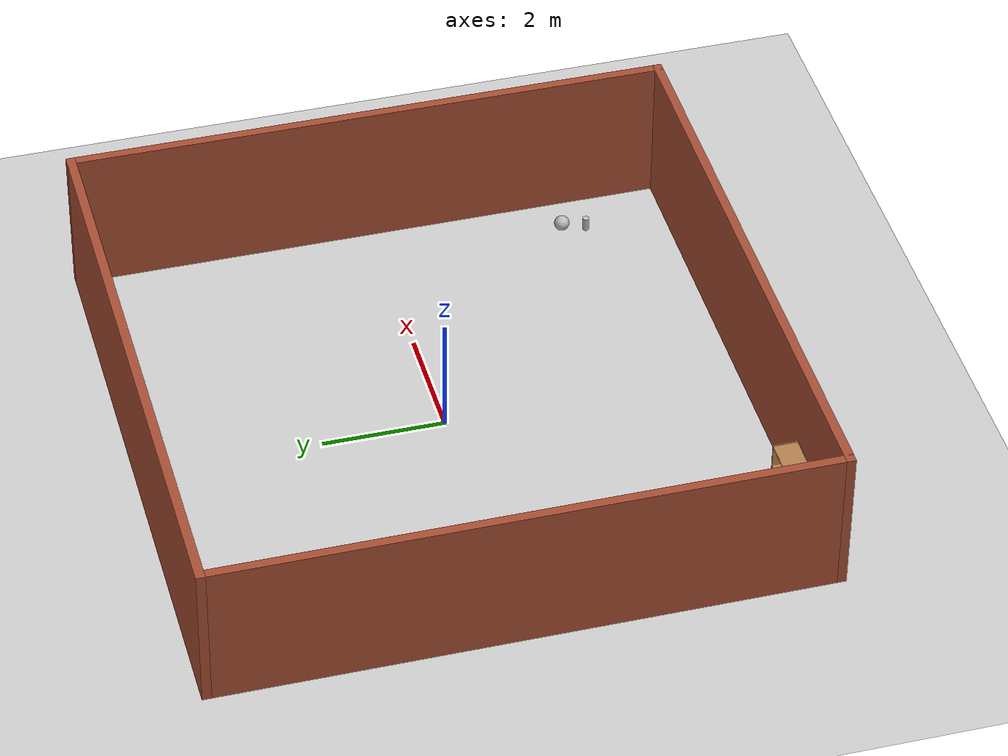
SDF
<sdf version="1.6">
 <world name="default">
  <light name="sun" type="directional">
   <pose>0 0 10 0 -0 0</pose>
   <diffuse>0.8 0.8 0.8 1</diffuse>
   <specular>0.2 0.2 0.2 1</specular>
   <attenuation>
    <range>1000</range>
    <constant>0.9</constant>
    <linear>0.01</linear>
    <quadratic>0.001</quadratic>
   </attenuation>
   <direction>-0.5 0.1 -0.9</direction>
  </light>
  <model name="ground_plane">
   <static>1</static>
   <link name="link">
    <collision name="collision">
     <geometry><plane><normal>0 0 1</normal><size>100 100</size></plane></geometry>
     <surface>
      <contact><collide_bitmask>65535</collide_bitmask></contact>
      <friction><ode><mu>100</mu><mu2>50</mu2></ode></friction>
     </surface>
    </collision>
    <visual name="visual">
     <cast_shadows>0</cast_shadows>
     <geometry><plane><normal>0 0 1</normal><size>100 100</size></plane></geometry>
     <material>
      <script><uri>file://media/materials/scripts/gazebo.material</uri><name>Gazebo/Grey</name></script>
     </material>
    </visual>
   </link>
  </model>
  <gravity>0 0 -9.8</gravity>
  <magnetic_field>6e-06 2.3e-05 -4.2e-05</magnetic_field>
  <atmosphere type="adiabatic"/>
  <physics name="default_physics" default="0" type="ode">
   <max_step_size>0.001</max_step_size>
   <real_time_factor>1</real_time_factor>
   <real_time_update_rate>1000</real_time_update_rate>
  </physics>
  <scene><ambient>0.4 0.4 0.4 1</ambient><background>0.7 0.7 0.7 1</background><shadows>1</shadows></scene>
  <spherical_coordinates>
   <surface_model>EARTH_WGS84</surface_model>
   <latitude_deg>0</latitude_deg>
   <longitude_deg>0</longitude_deg>
   <elevation>0</elevation>
   <heading_deg>0</heading_deg>
  </spherical_coordinates>
  <model name="Square_Room">
   <link name="Wall_13">
    <collision name="Wall_13_Collision">
     <geometry><box><size>10 0.15 2.5</size></box></geometry>
     <pose>0 0 1.25 0 -0 0</pose>
    </collision>
    <visual name="Wall_13_Visual">
     <pose>0 0 1.25 0 -0 0</pose>
     <geometry><box><size>10 0.15 2.5</size></box></geometry>
     <material>
      <script><uri>file://media/materials/scripts/gazebo.material</uri><name>Gazebo/Bricks</name></script>
      <ambient>0.435294 0.796078 0.67451 1</ambient>
     </material>
     <meta><layer>0</layer></meta>
    </visual>
    <pose>-4.92478 -0.013311 0 0 -0 -1.5708</pose>
   </link>
   <link name="Wall_14">
    <collision name="Wall_14_Collision">
     <geometry><box><size>10.0001 0.15 2.5</size></box></geometry>
     <pose>0 0 1.25 0 -0 0</pose>
    </collision>
    <visual name="Wall_14_Visual">
     <pose>0 0 1.25 0 -0 0</pose>
     <geometry><box><size>10.0001 0.15 2.5</size></box></geometry>
     <material>
      <script><uri>file://media/materials/scripts/gazebo.material</uri><name>Gazebo/Bricks</name></script>
      <ambient>1 1 1 1</ambient>
     </material>
     <meta><layer>0</layer></meta>
    </visual>
    <pose>0 -4.9249 0 0 -0 0.002724</pose>
   </link>
   <link name="Wall_15">
    <collision name="Wall_15_Collision">
     <geometry><box><size>10 0.15 2.5</size></box></geometry>
     <pose>0 0 1.25 0 -0 0</pose>
    </collision>
    <visual name="Wall_15_Visual">
     <pose>0 0 1.25 0 -0 0</pose>
     <geometry><box><size>10 0.15 2.5</size></box></geometry>
     <material>
      <script><uri>file://media/materials/scripts/gazebo.material</uri><name>Gazebo/Bricks</name></script>
      <ambient>1 1 1 1</ambient>
     </material>
     <meta><layer>0</layer></meta>
    </visual>
    <pose>4.92478 0.013516 0 0 -0 1.5708</pose>
   </link>
   <link name="Wall_16">
    <collision name="Wall_16_Collision">
     <geometry><box><size>10 0.15 2.5</size></box></geometry>
     <pose>0 0 1.25 0 -0 0</pose>
    </collision>
    <visual name="Wall_16_Visual">
     <pose>0 0 1.25 0 -0 0</pose>
     <geometry><box><size>10 0.15 2.5</size></box></geometry>
     <material>
      <script><uri>file://media/materials/scripts/gazebo.material</uri><name>Gazebo/Bricks</name></script>
      <ambient>1 1 1 1</ambient>
     </material>
     <meta><layer>0</layer></meta>
    </visual>
    <pose>-0.000218 4.93852 0 0 -0 3.14159</pose>
   </link>
   <static>1</static>
  </model>
  <model name="beer">
   <link name="link">
    <pose>0 0 0.115 0 -0 0</pose>
    <inertial>
     <mass>0.39</mass>
     <inertia><ixx>0.00058</ixx><ixy>0</ixy><ixz>0</ixz><iyy>0.00058</iyy><iyz>0</iyz><izz>0.00019</izz></inertia>
    </inertial>
    <collision name="collision">
     <geometry><cylinder><radius>0.055</radius><length>0.23</length></cylinder></geometry>
    </collision>
    <visual name="visual">
     <geometry><cylinder><radius>0.055</radius><length>0.23</length></cylinder></geometry>
     <material>
      <script>
       <uri>model://beer/materials/scripts</uri>
       <uri>model://beer/materials/textures</uri>
       <name>Beer/Diffuse</name>
      </script>
     </material>
    </visual>
   </link>
   <pose>4.09934 -3.48915 -2e-06 1e-06 0 -0.000149</pose>
  </model>
  <model name="bookshelf">
   <static>1</static>
   <link name="link">
    <inertial><mass>1</mass></inertial>
    <collision name="back">
     <pose>0 0.005 0.6 0 -0 0</pose>
     <geometry><box><size>0.9 0.01 1.2</size></box></geometry>
    </collision>
    <visual name="visual1">
     <pose>0 0.005 0.6 0 -0 0</pose>
     <geometry><box><size>0.9 0.01 1.2</size></box></geometry>
     <material>
      <script><uri>file://media/materials/scripts/gazebo.material</uri><name>Gazebo/Wood</name></script>
     </material>
    </visual>
    <collision name="left_side">
     <pose>0.45 -0.195 0.6 0 -0 0</pose>
     <geometry><box><size>0.02 0.4 1.2</size></box></geometry>
    </collision>
    <visual name="visual2">
     <pose>0.45 -0.195 0.6 0 -0 0</pose>
     <geometry><box><size>0.02 0.4 1.2</size></box></geometry>
     <material>
      <script><uri>file://media/materials/scripts/gazebo.material</uri><name>Gazebo/Wood</name></script>
     </material>
    </visual>
    <collision name="right_side">
     <pose>-0.45 -0.195 0.6 0 -0 0</pose>
     <geometry><box><size>0.02 0.4 1.2</size></box></geometry>
    </collision>
    <visual name="visual3">
     <pose>-0.45 -0.195 0.6 0 -0 0</pose>
     <geometry><box><size>0.02 0.4 1.2</size></box></geometry>
     <material>
      <script><uri>file://media/materials/scripts/gazebo.material</uri><name>Gazebo/Wood</name></script>
     </material>
    </visual>
    <collision name="bottom">
     <pose>0 -0.195 0.03 0 -0 0</pose>
     <geometry><box><size>0.88 0.4 0.06</size></box></geometry>
    </collision>
    <visual name="visual4">
     <pose>0 -0.195 0.03 0 -0 0</pose>
     <geometry><box><size>0.88 0.4 0.06</size></box></geometry>
     <material>
      <script><uri>file://media/materials/scripts/gazebo.material</uri><name>Gazebo/Wood</name></script>
     </material>
    </visual>
    <collision name="top">
     <pose>0 -0.195 1.19 0 -0 0</pose>
     <geometry><box><size>0.88 0.4 0.02</size></box></geometry>
    </collision>
    <visual name="visual5">
     <pose>0 -0.195 1.19 0 -0 0</pose>
     <geometry><box><size>0.88 0.4 0.02</size></box></geometry>
     <material>
      <script><uri>file://media/materials/scripts/gazebo.material</uri><name>Gazebo/Wood</name></script>
     </material>
    </visual>
    <collision name="low_shelf">
     <pose>0 -0.195 0.43 0 -0 0</pose>
     <geometry><box><size>0.88 0.4 0.02</size></box></geometry>
    </collision>
    <visual name="visual6">
     <pose>0 -0.195 0.43 0 -0 0</pose>
     <geometry><box><size>0.88 0.4 0.02</size></box></geometry>
     <material>
      <script><uri>file://media/materials/scripts/gazebo.material</uri><name>Gazebo/Wood</name></script>
     </material>
    </visual>
    <collision name="high_shelf">
     <pose>0 -0.195 0.8 0 -0 0</pose>
     <geometry><box><size>0.88 0.4 0.02</size></box></geometry>
    </collision>
    <visual name="visual7">
     <pose>0 -0.195 0.8 0 -0 0</pose>
     <geometry><box><size>0.88 0.4 0.02</size></box></geometry>
     <material>
      <script><uri>file://media/materials/scripts/gazebo.material</uri><name>Gazebo/Wood</name></script>
     </material>
    </visual>
   </link>
   <pose>-3.5 -4.8 0 0 -0 3.14159</pose>
  </model>
  <model name="bookshelf_0">
   <static>1</static>
   <link name="link">
    <inertial><mass>1</mass></inertial>
    <collision name="back">
     <pose>0 0.005 0.6 0 -0 0</pose>
     <geometry><box><size>0.9 0.01 1.2</size></box></geometry>
    </collision>
    <visual name="visual1">
     <pose>0 0.005 0.6 0 -0 0</pose>
     <geometry><box><size>0.9 0.01 1.2</size></box></geometry>
     <material>
      <script><uri>file://media/materials/scripts/gazebo.material</uri><name>Gazebo/Wood</name></script>
     </material>
    </visual>
    <collision name="left_side">
     <pose>0.45 -0.195 0.6 0 -0 0</pose>
     <geometry><box><size>0.02 0.4 1.2</size></box></geometry>
    </collision>
    <visual name="visual2">
     <pose>0.45 -0.195 0.6 0 -0 0</pose>
     <geometry><box><size>0.02 0.4 1.2</size></box></geometry>
     <material>
      <script><uri>file://media/materials/scripts/gazebo.material</uri><name>Gazebo/Wood</name></script>
     </material>
    </visual>
    <collision name="right_side">
     <pose>-0.45 -0.195 0.6 0 -0 0</pose>
     <geometry><box><size>0.02 0.4 1.2</size></box></geometry>
    </collision>
    <visual name="visual3">
     <pose>-0.45 -0.195 0.6 0 -0 0</pose>
     <geometry><box><size>0.02 0.4 1.2</size></box></geometry>
     <material>
      <script><uri>file://media/materials/scripts/gazebo.material</uri><name>Gazebo/Wood</name></script>
     </material>
    </visual>
    <collision name="bottom">
     <pose>0 -0.195 0.03 0 -0 0</pose>
     <geometry><box><size>0.88 0.4 0.06</size></box></geometry>
    </collision>
    <visual name="visual4">
     <pose>0 -0.195 0.03 0 -0 0</pose>
     <geometry><box><size>0.88 0.4 0.06</size></box></geometry>
     <material>
      <script><uri>file://media/materials/scripts/gazebo.material</uri><name>Gazebo/Wood</name></script>
     </material>
    </visual>
    <collision name="top">
     <pose>0 -0.195 1.19 0 -0 0</pose>
     <geometry><box><size>0.88 0.4 0.02</size></box></geometry>
    </collision>
    <visual name="visual5">
     <pose>0 -0.195 1.19 0 -0 0</pose>
     <geometry><box><size>0.88 0.4 0.02</size></box></geometry>
     <material>
      <script><uri>file://media/materials/scripts/gazebo.material</uri><name>Gazebo/Wood</name></script>
     </material>
    </visual>
    <collision name="low_shelf">
     <pose>0 -0.195 0.43 0 -0 0</pose>
     <geometry><box><size>0.88 0.4 0.02</size></box></geometry>
    </collision>
    <visual name="visual6">
     <pose>0 -0.195 0.43 0 -0 0</pose>
     <geometry><box><size>0.88 0.4 0.02</size></box></geometry>
     <material>
      <script><uri>file://media/materials/scripts/gazebo.material</uri><name>Gazebo/Wood</name></script>
     </material>
    </visual>
    <collision name="high_shelf">
     <pose>0 -0.195 0.8 0 -0 0</pose>
     <geometry><box><size>0.88 0.4 0.02</size></box></geometry>
    </collision>
    <visual name="visual7">
     <pose>0 -0.195 0.8 0 -0 0</pose>
     <geometry><box><size>0.88 0.4 0.02</size></box></geometry>
     <material>
      <script><uri>file://media/materials/scripts/gazebo.material</uri><name>Gazebo/Wood</name></script>
     </material>
    </visual>
   </link>
   <pose>-4.7 -3.7 0 0 -0 1.57</pose>
  </model>
  <model name="frc2016_ball">
   <pose>4.19728 -3.09992 0.126999 0 -0 0</pose>
   <link name="link">
    <inertial>
     <mass>0.213</mass>
     <inertia>
      <ixx>0.00322667</ixx>
      <ixy>0</ixy>
      <ixz>0</ixz>
      <iyy>0.00322667</iyy>
      <iyz>0</iyz>
      <izz>0.00322667</izz>
     </inertia>
    </inertial>
    <visual name="visual"><geometry><sphere><radius>0.127</radius></sphere></geometry></visual>
    <collision name="collision">
     <geometry><sphere><radius>0.127</radius></sphere></geometry>
     <surface>
      <bounce><restitution_coefficient>0.15937</restitution_coefficient><threshold>0</threshold></bounce>
      <contact><ode><max_vel>100</max_vel><min_depth>0.001</min_depth></ode></contact>
     </surface>
    </collision>
   </link>
  </model>
 </world>
</sdf>
